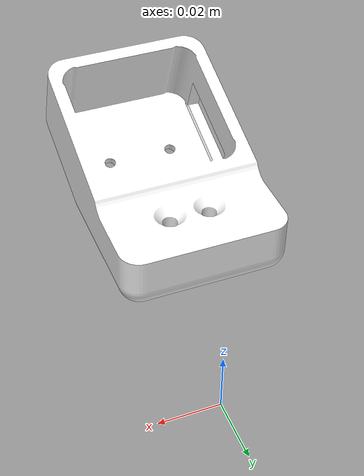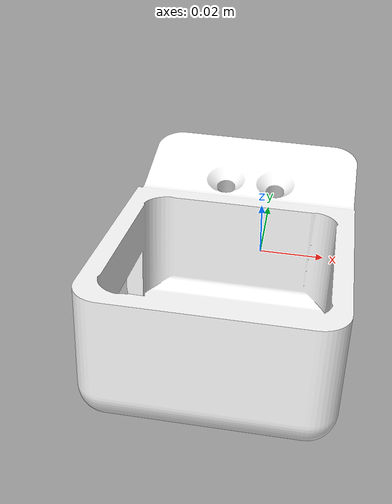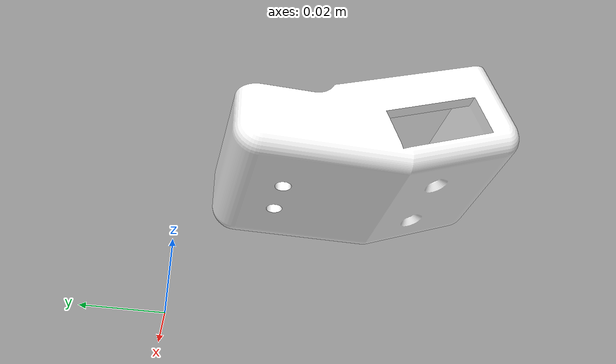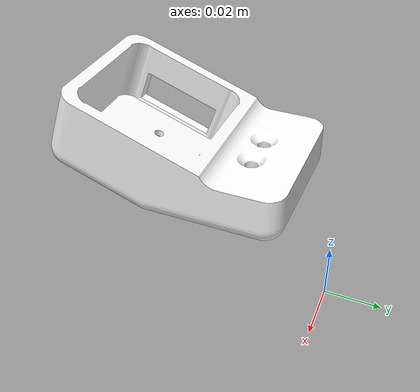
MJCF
<mujoco model="robotiq_d405_mount">
  <compiler angle="radian" meshdir="assets" autolimits="true"/>

  <option cone="elliptic" impratio="10"/>

  <asset>
    <material name="white"/>

    <mesh name="robotiq_d405_mount" file="robotiq_d405_mount.stl"/>
  </asset>

  <default>
    <default class="robotiq_d405_mount">
      <default class="visual">
        <geom type="mesh" contype="0" conaffinity="0" group="2" material="black"/>
      </default>
      <default class="collision">
        <geom type="mesh" group="3"/>
      </default>
    </default>
  </default>

  <worldbody>
    <body name="base" childclass="robotiq_d405_mount">
      <geom mesh="robotiq_d405_mount"  material="white" class="visual"/>
      <geom mesh="robotiq_d405_mount"  material="white" class="collision"/>
    </body>
  </worldbody>

</mujoco>
